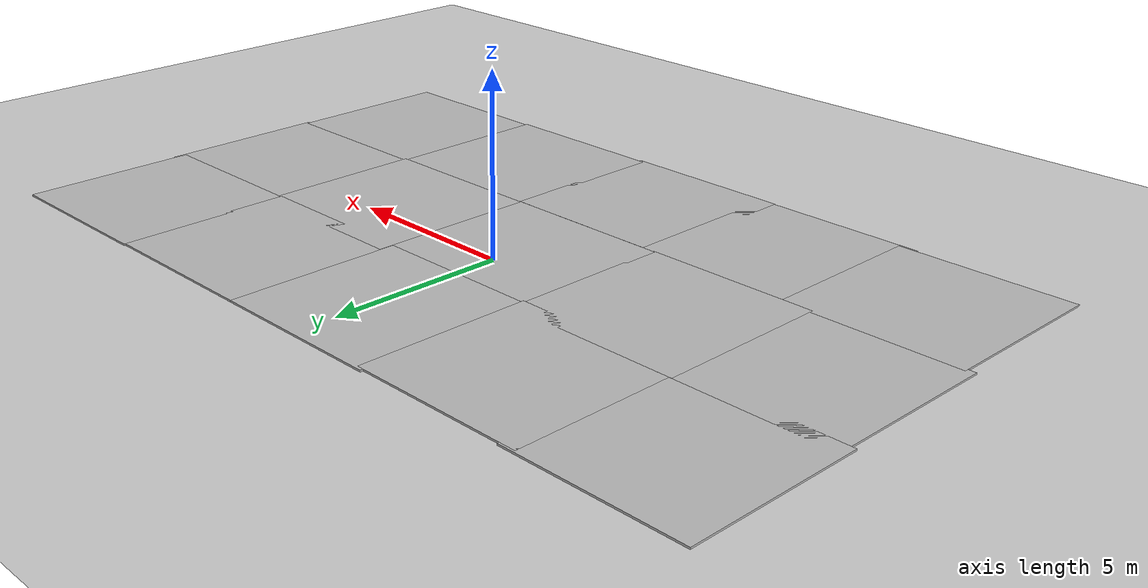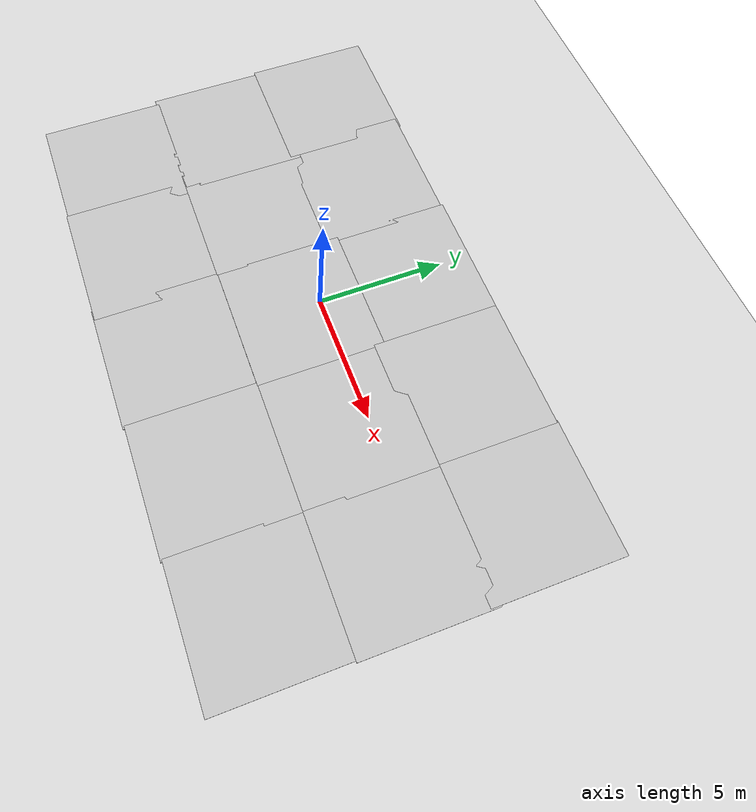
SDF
<sdf version="1.7">
 <world name="default">
  <model name="ground_plane">
   <static>1</static>
   <link name="link">
    <collision name="collision">
     <geometry><plane><normal>0 0 1</normal><size>100 100</size></plane></geometry>
     <surface>
      <contact><collide_bitmask>65535</collide_bitmask></contact>
      <friction><ode><mu>100</mu><mu2>50</mu2></ode></friction>
     </surface>
    </collision>
    <visual name="visual">
     <cast_shadows>0</cast_shadows>
     <geometry><plane><normal>0 0 1</normal><size>100 100</size></plane></geometry>
     <material>
      <script><uri>file://media/materials/scripts/gazebo.material</uri><name>Gazebo/Grey</name></script>
     </material>
    </visual>
   </link>
  </model>
  <light name="sun" type="directional">
   <pose>0 0 10 0 -0 0</pose>
   <diffuse>0.8 0.8 0.8 1</diffuse>
   <specular>0.2 0.2 0.2 1</specular>
   <attenuation>
    <range>1000</range>
    <constant>0.9</constant>
    <linear>0.01</linear>
    <quadratic>0.001</quadratic>
   </attenuation>
   <direction>-0.5 0.1 -0.9</direction>
   <spot><inner_angle>0</inner_angle><outer_angle>0</outer_angle><falloff>0</falloff></spot>
  </light>
  <model name="my_mesh">
   <pose>0.005027 -0.836988 0 0 0 -1.57077</pose>
   <static>1</static>
   <link name="body">
    <visual name="visual">
     <geometry>
      <mesh>
       <uri>file:///home/ideapad/develop/roboweed_ws/src/articubot_one/worlds/plant_ground/plant_ground.dae</uri>
      </mesh>
     </geometry>
    </visual>
   </link>
  </model>
  <gravity>0 0 -9.8</gravity>
  <magnetic_field>6e-06 2.3e-05 -4.2e-05</magnetic_field>
  <atmosphere type="adiabatic"/>
  <physics type="ode">
   <max_step_size>0.001</max_step_size>
   <real_time_factor>1</real_time_factor>
   <real_time_update_rate>1000</real_time_update_rate>
  </physics>
  <scene><ambient>0.4 0.4 0.4 1</ambient><background>0.7 0.7 0.7 1</background><shadows>1</shadows></scene>
  <audio><device>default</device></audio>
  <spherical_coordinates>
   <surface_model>EARTH_WGS84</surface_model>
   <latitude_deg>0</latitude_deg>
   <longitude_deg>0</longitude_deg>
   <elevation>0</elevation>
   <heading_deg>0</heading_deg>
  </spherical_coordinates>
  <model name="my_mesh_clone">
   <pose>0.016801 -5.83927 0 0 0 -1.57077</pose>
   <static>1</static>
   <link name="body">
    <visual name="visual">
     <geometry>
      <mesh>
       <uri>file:///home/ideapad/develop/roboweed_ws/src/articubot_one/worlds/plant_ground/plant_ground.dae</uri>
      </mesh>
     </geometry>
    </visual>
   </link>
  </model>
  <model name="my_mesh_clone_clone">
   <pose>-0.049166 3.76083 0 0 0 -1.57077</pose>
   <static>1</static>
   <link name="body">
    <visual name="visual">
     <geometry>
      <mesh>
       <uri>file:///home/ideapad/develop/roboweed_ws/src/articubot_one/worlds/plant_ground/plant_ground.dae</uri>
      </mesh>
     </geometry>
    </visual>
   </link>
  </model>
  <model name="my_mesh_clone_clone_0">
   <pose>4.97677 -0.821447 0 0 0 -1.57077</pose>
   <static>1</static>
   <link name="body">
    <visual name="visual">
     <geometry>
      <mesh>
       <uri>file:///home/ideapad/develop/roboweed_ws/src/articubot_one/worlds/plant_ground/plant_ground.dae</uri>
      </mesh>
     </geometry>
    </visual>
   </link>
  </model>
  <model name="my_mesh_clone_clone_1">
   <pose>4.90497 3.75903 0 0 0 -1.57077</pose>
   <static>1</static>
   <link name="body">
    <visual name="visual">
     <geometry>
      <mesh>
       <uri>file:///home/ideapad/develop/roboweed_ws/src/articubot_one/worlds/plant_ground/plant_ground.dae</uri>
      </mesh>
     </geometry>
    </visual>
   </link>
  </model>
  <model name="my_mesh_clone_clone_2">
   <pose>-4.9238 -0.868713 0 0 0 -1.57077</pose>
   <static>1</static>
   <link name="body">
    <visual name="visual">
     <geometry>
      <mesh>
       <uri>file:///home/ideapad/develop/roboweed_ws/src/articubot_one/worlds/plant_ground/plant_ground.dae</uri>
      </mesh>
     </geometry>
    </visual>
   </link>
  </model>
  <model name="my_mesh_clone_clone_3">
   <pose>-4.85061 3.67916 0 0 0 -1.57077</pose>
   <static>1</static>
   <link name="body">
    <visual name="visual">
     <geometry>
      <mesh>
       <uri>file:///home/ideapad/develop/roboweed_ws/src/articubot_one/worlds/plant_ground/plant_ground.dae</uri>
      </mesh>
     </geometry>
    </visual>
   </link>
  </model>
  <model name="my_mesh_clone_clone_4">
   <pose>-4.58424 -5.80896 0 0 0 -1.57077</pose>
   <static>1</static>
   <link name="body">
    <visual name="visual">
     <geometry>
      <mesh>
       <uri>file:///home/ideapad/develop/roboweed_ws/src/articubot_one/worlds/plant_ground/plant_ground.dae</uri>
      </mesh>
     </geometry>
    </visual>
   </link>
  </model>
  <model name="my_mesh_clone_clone_5">
   <pose>4.88651 -5.77442 0 0 0 -1.57077</pose>
   <static>1</static>
   <link name="body">
    <visual name="visual">
     <geometry>
      <mesh>
       <uri>file:///home/ideapad/develop/roboweed_ws/src/articubot_one/worlds/plant_ground/plant_ground.dae</uri>
      </mesh>
     </geometry>
    </visual>
   </link>
  </model>
  <model name="my_mesh_clone_clone_0_clone">
   <pose>9.85638 -0.825943 0 0 0 -1.57077</pose>
   <static>1</static>
   <link name="body">
    <visual name="visual">
     <geometry>
      <mesh>
       <uri>file:///home/ideapad/develop/roboweed_ws/src/articubot_one/worlds/plant_ground/plant_ground.dae</uri>
      </mesh>
     </geometry>
    </visual>
   </link>
  </model>
  <model name="my_mesh_clone_clone_0_clone_0">
   <pose>9.8101 3.79479 0 0 0 -1.57077</pose>
   <static>1</static>
   <link name="body">
    <visual name="visual">
     <geometry>
      <mesh>
       <uri>file:///home/ideapad/develop/roboweed_ws/src/articubot_one/worlds/plant_ground/plant_ground.dae</uri>
      </mesh>
     </geometry>
    </visual>
   </link>
  </model>
  <model name="my_mesh_clone_clone_0_clone_1">
   <pose>9.7889 -5.72113 0 0 0 -1.57077</pose>
   <static>1</static>
   <link name="body">
    <visual name="visual">
     <geometry>
      <mesh>
       <uri>file:///home/ideapad/develop/roboweed_ws/src/articubot_one/worlds/plant_ground/plant_ground.dae</uri>
      </mesh>
     </geometry>
    </visual>
   </link>
  </model>
  <model name="my_mesh_clone_clone_0_clone_2">
   <pose>-9.04626 -5.75948 0 0 0 -1.57077</pose>
   <static>1</static>
   <link name="body">
    <visual name="visual">
     <geometry>
      <mesh>
       <uri>file:///home/ideapad/develop/roboweed_ws/src/articubot_one/worlds/plant_ground/plant_ground.dae</uri>
      </mesh>
     </geometry>
    </visual>
   </link>
  </model>
  <model name="my_mesh_clone_clone_0_clone_3">
   <pose>-9.26308 -0.864641 0 0 0 -1.57077</pose>
   <static>1</static>
   <link name="body">
    <visual name="visual">
     <geometry>
      <mesh>
       <uri>file:///home/ideapad/develop/roboweed_ws/src/articubot_one/worlds/plant_ground/plant_ground.dae</uri>
      </mesh>
     </geometry>
    </visual>
   </link>
  </model>
  <model name="my_mesh_clone_clone_0_clone_4">
   <pose>-9.39458 3.73678 0 0 0 -1.57077</pose>
   <static>1</static>
   <link name="body">
    <visual name="visual">
     <geometry>
      <mesh>
       <uri>file:///home/ideapad/develop/roboweed_ws/src/articubot_one/worlds/plant_ground/plant_ground.dae</uri>
      </mesh>
     </geometry>
    </visual>
   </link>
  </model>
 </world>
</sdf>
